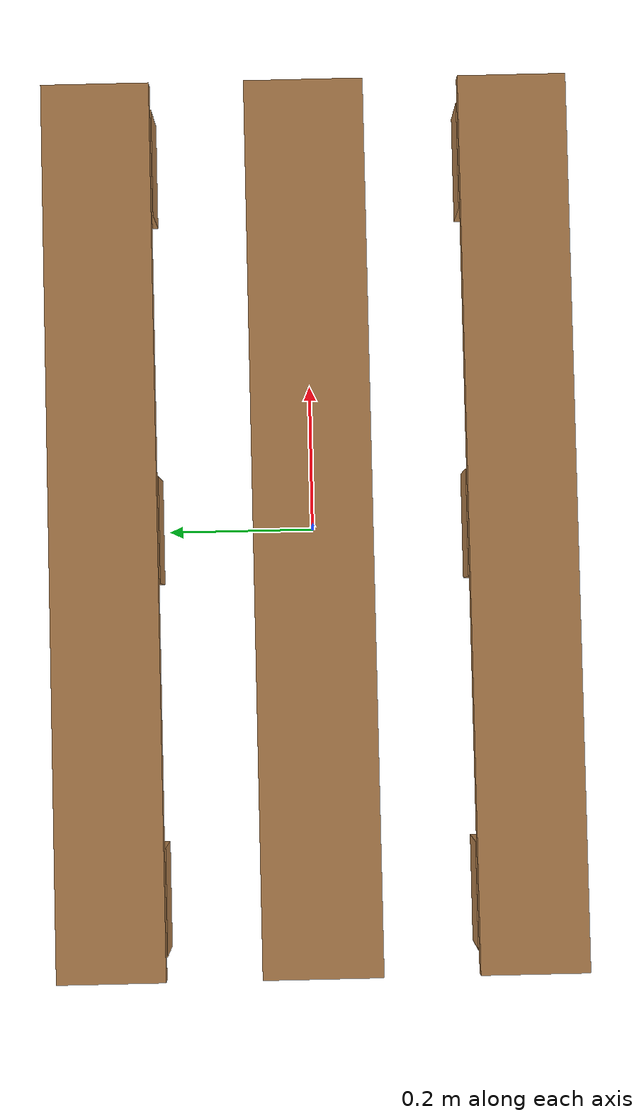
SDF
<?xml version="1.0"?>
<sdf version="1.6">
  <model name="pallet">
    <!-- 托盘不是静态的，可以被叉车移动 -->
    <static>false</static>

    <!-- ==================== 上层面板 ==================== -->
    <!--
      上层面板由3块木板组成：
      - 中央宽板
      - 两侧窄板
    -->
    <link name="base_link">
      <!-- 上层中央板 -->
      <visual name="top_center_visual">
        <pose>0 0 0.139 0 0 0</pose>
        <geometry>
          <box><size>1.2 0.16 0.022</size></box>
        </geometry>
        <material>
          <script>
            <uri>file://media/materials/scripts/gazebo.material</uri>
            <name>Gazebo/Wood</name>
          </script>
        </material>
      </visual>
      <collision name="top_center_collision">
        <pose>0 0 0.139 0 0 0</pose>
        <geometry>
          <box><size>1.2 0.16 0.022</size></box>
        </geometry>
      </collision>

      <!-- 上层左板 -->
      <visual name="top_left_visual">
        <pose>0 0.28 0.139 0 0 0</pose>
        <geometry>
          <box><size>1.2 0.145 0.022</size></box>
        </geometry>
        <material>
          <script>
            <uri>file://media/materials/scripts/gazebo.material</uri>
            <name>Gazebo/Wood</name>
          </script>
        </material>
      </visual>
      <collision name="top_left_collision">
        <pose>0 0.28 0.139 0 0 0</pose>
        <geometry>
          <box><size>1.2 0.145 0.022</size></box>
        </geometry>
      </collision>

      <!-- 上层右板 -->
      <visual name="top_right_visual">
        <pose>0 -0.28 0.139 0 0 0</pose>
        <geometry>
          <box><size>1.2 0.145 0.022</size></box>
        </geometry>
        <material>
          <script>
            <uri>file://media/materials/scripts/gazebo.material</uri>
            <name>Gazebo/Wood</name>
          </script>
        </material>
      </visual>
      <collision name="top_right_collision">
        <pose>0 -0.28 0.139 0 0 0</pose>
        <geometry>
          <box><size>1.2 0.145 0.022</size></box>
        </geometry>
      </collision>

      <!-- ==================== 支脚（9个，3x3排列）==================== -->
      <!-- 支脚高度：0.095m，截面：0.145m x 0.145m -->

      <!-- 前排支脚 (X=+0.5) -->
      <visual name="block_front_left_visual">
        <pose>0.5 0.28 0.0625 0 0 0</pose>
        <geometry><box><size>0.145 0.145 0.095</size></box></geometry>
        <material><script><uri>file://media/materials/scripts/gazebo.material</uri><name>Gazebo/Wood</name></script></material>
      </visual>
      <collision name="block_front_left_collision">
        <pose>0.5 0.28 0.0625 0 0 0</pose>
        <geometry><box><size>0.145 0.145 0.095</size></box></geometry>
      </collision>

      <visual name="block_front_center_visual">
        <pose>0.5 0 0.0625 0 0 0</pose>
        <geometry><box><size>0.145 0.145 0.095</size></box></geometry>
        <material><script><uri>file://media/materials/scripts/gazebo.material</uri><name>Gazebo/Wood</name></script></material>
      </visual>
      <collision name="block_front_center_collision">
        <pose>0.5 0 0.0625 0 0 0</pose>
        <geometry><box><size>0.145 0.145 0.095</size></box></geometry>
      </collision>

      <visual name="block_front_right_visual">
        <pose>0.5 -0.28 0.0625 0 0 0</pose>
        <geometry><box><size>0.145 0.145 0.095</size></box></geometry>
        <material><script><uri>file://media/materials/scripts/gazebo.material</uri><name>Gazebo/Wood</name></script></material>
      </visual>
      <collision name="block_front_right_collision">
        <pose>0.5 -0.28 0.0625 0 0 0</pose>
        <geometry><box><size>0.145 0.145 0.095</size></box></geometry>
      </collision>

      <!-- 中排支脚 (X=0) -->
      <visual name="block_mid_left_visual">
        <pose>0 0.28 0.0625 0 0 0</pose>
        <geometry><box><size>0.145 0.145 0.095</size></box></geometry>
        <material><script><uri>file://media/materials/scripts/gazebo.material</uri><name>Gazebo/Wood</name></script></material>
      </visual>
      <collision name="block_mid_left_collision">
        <pose>0 0.28 0.0625 0 0 0</pose>
        <geometry><box><size>0.145 0.145 0.095</size></box></geometry>
      </collision>

      <visual name="block_mid_center_visual">
        <pose>0 0 0.0625 0 0 0</pose>
        <geometry><box><size>0.145 0.145 0.095</size></box></geometry>
        <material><script><uri>file://media/materials/scripts/gazebo.material</uri><name>Gazebo/Wood</name></script></material>
      </visual>
      <collision name="block_mid_center_collision">
        <pose>0 0 0.0625 0 0 0</pose>
        <geometry><box><size>0.145 0.145 0.095</size></box></geometry>
      </collision>

      <visual name="block_mid_right_visual">
        <pose>0 -0.28 0.0625 0 0 0</pose>
        <geometry><box><size>0.145 0.145 0.095</size></box></geometry>
        <material><script><uri>file://media/materials/scripts/gazebo.material</uri><name>Gazebo/Wood</name></script></material>
      </visual>
      <collision name="block_mid_right_collision">
        <pose>0 -0.28 0.0625 0 0 0</pose>
        <geometry><box><size>0.145 0.145 0.095</size></box></geometry>
      </collision>

      <!-- 后排支脚 (X=-0.5) -->
      <visual name="block_rear_left_visual">
        <pose>-0.5 0.28 0.0625 0 0 0</pose>
        <geometry><box><size>0.145 0.145 0.095</size></box></geometry>
        <material><script><uri>file://media/materials/scripts/gazebo.material</uri><name>Gazebo/Wood</name></script></material>
      </visual>
      <collision name="block_rear_left_collision">
        <pose>-0.5 0.28 0.0625 0 0 0</pose>
        <geometry><box><size>0.145 0.145 0.095</size></box></geometry>
      </collision>

      <visual name="block_rear_center_visual">
        <pose>-0.5 0 0.0625 0 0 0</pose>
        <geometry><box><size>0.145 0.145 0.095</size></box></geometry>
        <material><script><uri>file://media/materials/scripts/gazebo.material</uri><name>Gazebo/Wood</name></script></material>
      </visual>
      <collision name="block_rear_center_collision">
        <pose>-0.5 0 0.0625 0 0 0</pose>
        <geometry><box><size>0.145 0.145 0.095</size></box></geometry>
      </collision>

      <visual name="block_rear_right_visual">
        <pose>-0.5 -0.28 0.0625 0 0 0</pose>
        <geometry><box><size>0.145 0.145 0.095</size></box></geometry>
        <material><script><uri>file://media/materials/scripts/gazebo.material</uri><name>Gazebo/Wood</name></script></material>
      </visual>
      <collision name="block_rear_right_collision">
        <pose>-0.5 -0.28 0.0625 0 0 0</pose>
        <geometry><box><size>0.145 0.145 0.095</size></box></geometry>
      </collision>

      <!-- ==================== 底部纵向垫木（3根）==================== -->
      <!-- 垫木高度：0.022m，宽度：0.1m，沿X轴方向 -->

      <!-- 左侧垫木 -->
      <visual name="bottom_board_left_visual">
        <pose>0 0.28 0.011 0 0 0</pose>
        <geometry><box><size>1.2 0.1 0.022</size></box></geometry>
        <material><script><uri>file://media/materials/scripts/gazebo.material</uri><name>Gazebo/Wood</name></script></material>
      </visual>
      <collision name="bottom_board_left_collision">
        <pose>0 0.28 0.011 0 0 0</pose>
        <geometry><box><size>1.2 0.1 0.022</size></box></geometry>
      </collision>

      <!-- 中央垫木 -->
      <visual name="bottom_board_center_visual">
        <pose>0 0 0.011 0 0 0</pose>
        <geometry><box><size>1.2 0.1 0.022</size></box></geometry>
        <material><script><uri>file://media/materials/scripts/gazebo.material</uri><name>Gazebo/Wood</name></script></material>
      </visual>
      <collision name="bottom_board_center_collision">
        <pose>0 0 0.011 0 0 0</pose>
        <geometry><box><size>1.2 0.1 0.022</size></box></geometry>
      </collision>

      <!-- 右侧垫木 -->
      <visual name="bottom_board_right_visual">
        <pose>0 -0.28 0.011 0 0 0</pose>
        <geometry><box><size>1.2 0.1 0.022</size></box></geometry>
        <material><script><uri>file://media/materials/scripts/gazebo.material</uri><name>Gazebo/Wood</name></script></material>
      </visual>
      <collision name="bottom_board_right_collision">
        <pose>0 -0.28 0.011 0 0 0</pose>
        <geometry><box><size>1.2 0.1 0.022</size></box></geometry>
      </collision>

      <!-- ==================== 物理参数 ==================== -->
      <inertial>
        <pose>0 0 0.072 0 0 0</pose>
        <mass>25.0</mass>
        <!-- 简化为等效长方体惯量：1.2 x 0.8 x 0.144 -->
        <inertia>
          <ixx>0.2197</ixx>
          <ixy>0.0</ixy>
          <ixz>0.0</ixz>
          <iyy>0.3268</iyy>
          <iyz>0.0</iyz>
          <izz>0.5000</izz>
        </inertia>
      </inertial>

      <!-- 接触面摩擦参数 -->
      <collision name="top_center_collision">
        <surface>
          <friction>
            <ode>
              <mu>0.6</mu>
              <mu2>0.6</mu2>
            </ode>
          </friction>
          <contact>
            <ode>
              <kp>1000000.0</kp>
              <kd>100.0</kd>
              <min_depth>0.001</min_depth>
            </ode>
          </contact>
        </surface>
      </collision>
    </link>
  </model>
</sdf>
